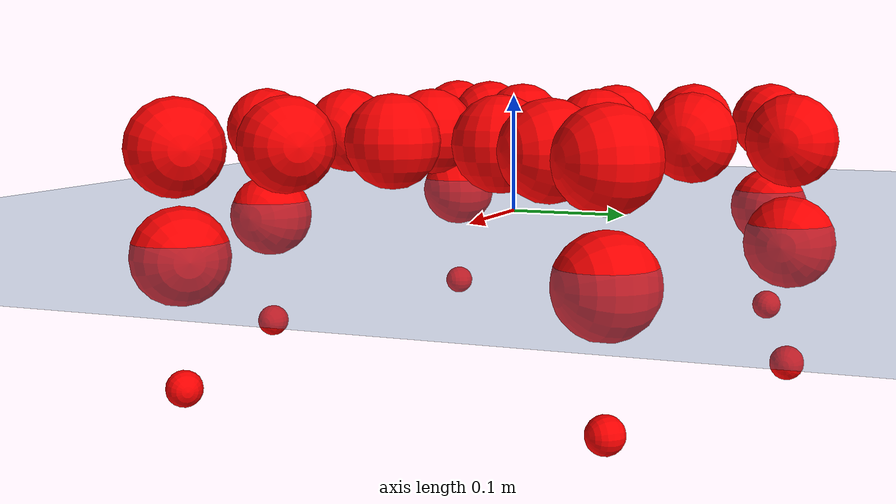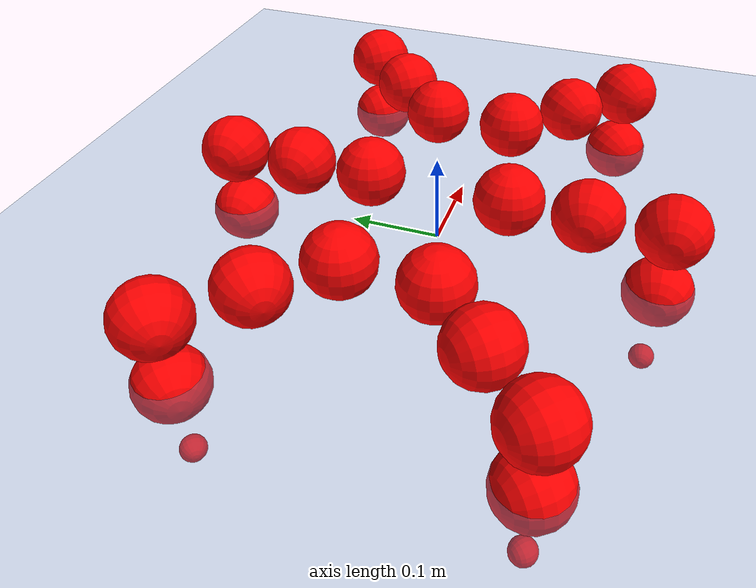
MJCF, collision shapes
<mujoco model="Golem">
  <compiler angle="radian" assetdir="assets" balanceinertia="true" inertiafromgeom="false"/>

  <option timestep="0.005" density="1.2" viscosity="2e-05"/>

  <size nkey="1"/>

  <visual>
    <quality shadowsize="8192"/>
    <map shadowclip="0.5"/>
  </visual>

  <default>
    <default class="/">
      <joint armature="0.01" damping="0.01" frictionloss="0.01"/>
      <geom contype="0" conaffinity="0" group="1" solref="-1000 -80"/>
      <site size="0.01 0.005 0.005" group="5"/>
      <general forcelimited="true" biastype="affine" gainprm="25" biasprm="0 -25 -0.5"/>
      <default class="visual">
        <geom type="mesh" group="2"/>
      </default>
      <default class="collision">
        <geom group="3"/>
      </default>
      <default class="foot">
        <geom size="0.01 0 0" condim="6" group="4" priority="1" solimp="0.015 1 0.01"/>
      </default>
      <default class="reward_collision_sphere">
        <geom group="5" rgba="1 0 0 1"/>
      </default>
    </default>
  </default>

  <asset>
    <texture type="skybox" colorspace="auto" name="//unnamed_texture_0" builtin="gradient" rgb1="0.95 0.95 0.95" rgb2="0.95 0.95 0.95" width="100" height="600"/>
    <texture type="2d" colorspace="auto" name="texplane" builtin="checker" rgb1="0.345 0.575 0.748" rgb2="0.345 0.575 0.748" markrgb="1 1 1" width="512" height="512"/>
    <material name="MatPlane" class="/" texture="texplane" texuniform="true" texrepeat="2 2" specular="0.9"/>
    <mesh name="body" class="/" file="body.stl" scale="0.001 0.001 0.001"/>
    <mesh name="coxa" class="/" file="coxa.stl" scale="0.001 0.001 0.001"/>
    <mesh name="femur" class="/" file="femur.stl" scale="0.001 0.001 0.001"/>
    <mesh name="tibia" class="/" file="tibia.stl" scale="0.001 0.001 0.001"/>
    <mesh name="tarsus" class="/" file="tarsus.stl" scale="0.001 0.001 0.001"/>
  </asset>

  <worldbody>
    <geom name="floor" class="/" size="100 100 0.125" type="plane" group="0" material="MatPlane"/>
    <light name="toplight_shadow" class="/" pos="0 0 5" dir="0.0990148 0.0990148 -0.990148" type="directional" ambient="0.04 0.04 0.04" diffuse="0.55 0.55 0.55" specular="0.12 0.12 0.12"/>
    <light name="toplight_fill" class="/" pos="0 0 5" dir="0.0990148 0.0990148 -0.990148" type="directional" castshadow="false" ambient="0.04 0.04 0.04" diffuse="0.3 0.3 0.3" specular="0.08 0.08 0.08"/>
    <body name="trunk" pos="0.000988868 0.000257429 -0.00174792" quat="1 6.80404e-05 1.97132e-05 -7.23256e-05">
      <inertial pos="-0.000472363 -0.000339 -0.00314926" quat="1 2.5515e-05 3.82514e-06 6.56989e-06" mass="3.139" diaginertia="0.00699569 0.00315077 0.016426"/>
      <joint name="//unnamed_joint_0" type="free"/>
      <geom name="//unnamed_geom_1" class="/" pos="0 0 0.0708021" quat="1 0 0 0" type="mesh" rgba="0.9 0.9 0.9 1" mesh="body"/>
      <site name="imu" class="/" pos="0.123172 -0.0023631 0.108466" size="0.00944907"/>
      <camera name="track" class="/" pos="0 -1.5866 0" quat="0.707107 0.707107 0 0" mode="trackcom"/>
      <camera name="ego_camera" class="/" pos="0.121568 0 0.110628" quat="-0.5 -0.5 0.5 0.5"/>
      <body name="coxa_RR" pos="-0.167633 -0.0671086 0.0703386" quat="0.382688 -8.87036e-05 0.000164609 -0.923878">
        <inertial pos="0.00029253 -0.00160537 0.000689582" quat="1 0.000533196 0.000169094 -0.000304204" mass="0.164676" diaginertia="0.00697655 0.00309911 0.0159879"/>
        <joint name="coxa_joint_RR" class="/" pos="0 0 0" axis="-0.0058699 -0.00117905 -0.999982" range="-3.13937 3.14433" armature="0.00981757" damping="0.0137444" frictionloss="0.00970388"/>
        <geom name="//unnamed_geom_2" class="/" type="mesh" rgba="0.2 0.2 0.2 1" mesh="coxa"/>
        <geom name="//unnamed_geom_3" class="reward_collision_sphere" size="0.0377963" pos="-0.0280541 0 0"/>
        <body name="femur_RR" pos="0.0571344 -0.000893251 0.000585143" quat="0.499953 -0.499992 0.499933 0.500121">
          <inertial pos="0.000185932 -0.000807386 0.000895024" quat="1 -0.000162002 -0.000230158 0.000189027" mass="0.168472" diaginertia="0.0071051 0.00311977 0.0165184"/>
          <joint name="femur_joint_RR" class="/" pos="0 0 0" axis="-0.00126504 0.00220338 -0.999997" stiffness="0.0021516" range="-3.14447 3.11264" armature="0.00957401" damping="0.00206094" frictionloss="0.00941387"/>
          <geom name="//unnamed_geom_4" class="/" type="mesh" rgba="0.9 0.9 0.9 1" mesh="femur"/>
          <geom name="//unnamed_geom_5" class="reward_collision_sphere" size="0.0377963"/>
          <body name="tibia_RR" pos="0.00114197 -0.0855705 0.00116237" quat="-0.000308938 1 5.08596e-05 -0.000325023">
            <inertial pos="-0.000758038 0.000644667 -6.47234e-05" quat="1 6.59511e-05 -0.000868907 -0.00039688" mass="0.168471" diaginertia="0.00709505 0.00311577 0.0163997"/>
            <joint name="tibia_joint_RR" class="/" pos="0 0 0" axis="0.00581792 -0.00244469 0.99998" range="-3.17139 3.15842" armature="0.00940919" damping="0.000319291" frictionloss="0.00968053"/>
            <geom name="//unnamed_geom_6" class="/" type="mesh" rgba="0.2 0.2 0.2 1" mesh="tibia"/>
            <geom name="//unnamed_geom_7" class="reward_collision_sphere" size="0.0377963"/>
            <body name="tarsus_RR" pos="0.0809603 0.00153445 0.000687336" quat="1 8.81135e-05 -0.000135354 0.00011051">
              <inertial pos="0.0558509 0.00162015 -3.14538e-05" quat="0.500414 0.497208 0.498891 0.503466" mass="0.169135" diaginertia="0.00721328 0.0031209 0.016633"/>
              <joint name="tarsus_joint_RR" class="/" pos="0 0 0" axis="0.00132665 4.81179e-05 0.999999" range="-3.12842 3.13948" armature="0.00950018" damping="0.00846744" frictionloss="0.00963057"/>
              <geom name="//unnamed_geom_8" class="/" type="mesh" rgba="0.9 0.9 0.9 1" mesh="tarsus"/>
              <geom name="foot_1" class="foot" size="0.00941674" pos="0.104735 0 0" quat="0 -0.707107 0 0.707107"/>
              <geom name="//unnamed_geom_10" class="reward_collision_sphere" size="0.0377963"/>
              <geom name="//unnamed_geom_11" class="reward_collision_sphere" size="0.0141736" pos="0.100527 0 0"/>
              <site name="foot_1" class="foot" pos="0.104735 0 0" quat="0 -0.707107 0 0.707107" size="0.00944907"/>
            </body>
          </body>
        </body>
      </body>
      <body name="coxa_RM" pos="-0.000514938 -0.106321 0.0693732" quat="0.706562 -3.98007e-05 -0.000605866 -0.70765">
        <inertial pos="-0.000784993 9.76003e-05 0.00135309" quat="0.999997 -0.00211462 -0.00145917 0.000166196" mass="0.166906" diaginertia="0.00694498 0.00309222 0.0167379"/>
        <joint name="coxa_joint_RM" class="/" pos="0 0 0" axis="-0.000303933 9.16385e-05 -1" range="-3.17837 3.13447" armature="0.00998572" damping="0.0142167" frictionloss="0.00942618"/>
        <geom name="//unnamed_geom_12" class="/" type="mesh" rgba="0.2 0.2 0.2 1" mesh="coxa"/>
        <geom name="//unnamed_geom_13" class="reward_collision_sphere" size="0.0377963" pos="-0.0280541 0 0"/>
        <body name="femur_RM" pos="0.0543617 -0.000197367 -0.00101256" quat="0.500434 -0.499954 0.499932 0.49968">
          <inertial pos="-0.000895371 0.000916535 -0.000901092" quat="0.999987 -0.00224712 -0.003633 0.00287403" mass="0.169436" diaginertia="0.00718484 0.00314786 0.0165962"/>
          <joint name="femur_joint_RM" class="/" pos="0 0 0" axis="-0.00023379 -5.04603e-05 -1" range="-3.13295 3.13542" armature="0.00965562" damping="0.0113468" frictionloss="0.00990795"/>
          <geom name="//unnamed_geom_14" class="/" type="mesh" rgba="0.9 0.9 0.9 1" mesh="femur"/>
          <geom name="//unnamed_geom_15" class="reward_collision_sphere" size="0.0377963"/>
          <body name="tibia_RM" pos="0.000457435 -0.0843392 0.000696478" quat="0.00010188 1 0.000172959 -7.22486e-05">
            <inertial pos="0.00114556 0.00122609 -0.000186439" quat="1 -6.79787e-05 4.62788e-05 -0.000108349" mass="0.172404" diaginertia="0.00727736 0.00321011 0.0167548"/>
            <joint name="tibia_joint_RM" class="/" pos="0 0 0" axis="-3.18859e-05 -0.00344695 0.999994" range="-3.14337 3.09563" armature="0.00907949" damping="0" frictionloss="0.00949783"/>
            <geom name="//unnamed_geom_16" class="/" type="mesh" rgba="0.2 0.2 0.2 1" mesh="tibia"/>
            <geom name="//unnamed_geom_17" class="reward_collision_sphere" size="0.0377963"/>
            <body name="tarsus_RM" pos="0.0804784 -0.00165003 -0.000459101" quat="1 -1.10196e-05 -8.46817e-06 -4.86763e-06">
              <inertial pos="0.055108 0.00215902 -0.000777555" quat="0.500614 0.499629 0.500155 0.499601" mass="0.164633" diaginertia="0.00714544 0.00314469 0.0167699"/>
              <joint name="tarsus_joint_RM" class="/" pos="0 0 0" axis="0.00245281 0.00386526 0.99999" range="-3.13302 3.13503" armature="0.00913004" damping="0.00494026" frictionloss="0.00949178"/>
              <geom name="//unnamed_geom_18" class="/" type="mesh" rgba="0.9 0.9 0.9 1" mesh="tarsus"/>
              <geom name="foot_2" class="foot" size="0.00916588" pos="0.104735 0 0" quat="0 -0.707107 0 0.707107"/>
              <geom name="//unnamed_geom_20" class="reward_collision_sphere" size="0.0377963"/>
              <geom name="//unnamed_geom_21" class="reward_collision_sphere" size="0.0141736" pos="0.100527 0 0"/>
              <site name="foot_2" class="foot" pos="0.104735 0 0" quat="0 -0.707107 0 0.707107" size="0.00944907"/>
            </body>
          </body>
        </body>
      </body>
      <body name="coxa_RF" pos="0.166181 -0.064984 0.0703409" quat="0.92386 2.74782e-05 6.65018e-05 -0.38273">
        <inertial pos="-0.00106572 -0.00024058 0.000958613" quat="0.999993 -0.00243373 6.94346e-05 0.00271296" mass="0.171786" diaginertia="0.00738093 0.00313875 0.0170764"/>
        <joint name="coxa_joint_RF" class="/" pos="0 0 0" axis="0.00136021 -0.00579333 -0.999982" range="-3.12648 3.1404" armature="0.0092215" damping="0.0017936" frictionloss="0.00921128"/>
        <geom name="//unnamed_geom_22" class="/" type="mesh" rgba="0.2 0.2 0.2 1" mesh="coxa"/>
        <geom name="//unnamed_geom_23" class="reward_collision_sphere" size="0.0377963" pos="-0.0280541 0 0"/>
        <body name="femur_RF" pos="0.0568099 -0.00138689 4.57443e-05" quat="0.499676 -0.499943 0.499884 0.500497">
          <inertial pos="-0.000497903 0.000932653 0.000648475" quat="0.999996 0.00263226 4.41915e-05 -0.000481568" mass="0.162742" diaginertia="0.00710625 0.00308816 0.0162877"/>
          <joint name="femur_joint_RF" class="/" pos="0 0 0" axis="0.000799404 0.000276438 -1" range="-3.15934 3.10754" armature="0.00851994" damping="0.00814476" frictionloss="0.00852798"/>
          <geom name="//unnamed_geom_24" class="/" type="mesh" rgba="0.9 0.9 0.9 1" mesh="femur"/>
          <geom name="//unnamed_geom_25" class="reward_collision_sphere" size="0.0377963"/>
          <body name="tibia_RF" pos="-0.000319399 -0.084009 0.00129349" quat="8.4103e-05 1 0.000144838 -7.31732e-05">
            <inertial pos="-0.0013718 0.000114138 -0.000100951" quat="1 -0.000172651 0.000400517 -0.000234732" mass="0.17061" diaginertia="0.00715228 0.00315563 0.0166366"/>
            <joint name="tibia_joint_RF" class="/" pos="0 0 0" axis="0.00194809 0.000176801 0.999998" range="-3.14936 3.14122" armature="0.00943308" damping="0" frictionloss="0.00913302"/>
            <geom name="//unnamed_geom_26" class="/" type="mesh" rgba="0.2 0.2 0.2 1" mesh="tibia"/>
            <geom name="//unnamed_geom_27" class="reward_collision_sphere" size="0.0377963"/>
            <body name="tarsus_RF" pos="0.0808847 -0.00159013 -0.000561148" quat="1 6.17069e-07 7.15241e-06 5.66477e-05">
              <inertial pos="0.0550831 0.000873982 5.82181e-05" quat="0.500215 0.498651 0.493139 0.507884" mass="0.170741" diaginertia="0.00722465 0.00317407 0.0163858"/>
              <joint name="tarsus_joint_RF" class="/" pos="0 0 0" axis="-2.63637e-05 0.00117951 0.999999" range="-3.13453 3.142" armature="0.00864819" damping="0.0049541" frictionloss="0.00902002"/>
              <geom name="//unnamed_geom_28" class="/" type="mesh" rgba="0.9 0.9 0.9 1" mesh="tarsus"/>
              <geom name="foot_3" class="foot" size="0.00943032" pos="0.104735 0 0" quat="0 -0.707107 0 0.707107"/>
              <geom name="//unnamed_geom_30" class="reward_collision_sphere" size="0.0377963"/>
              <geom name="//unnamed_geom_31" class="reward_collision_sphere" size="0.0141736" pos="0.100527 0 0"/>
              <site name="foot_3" class="foot" pos="0.104735 0 0" quat="0 -0.707107 0 0.707107" size="0.00944907"/>
            </body>
          </body>
        </body>
      </body>
      <body name="coxa_LR" pos="-0.165188 0.0689806 0.0702907" quat="0.38272 -1.1969e-05 2.8706e-05 0.923864">
        <inertial pos="-0.00088447 -2.94021e-05 0.000120809" quat="0.999966 -0.0022969 -0.00719421 -0.0033933" mass="0.171154" diaginertia="0.00711261 0.00317555 0.0165481"/>
        <joint name="coxa_joint_LR" class="/" pos="0 0 0" axis="0.00285213 0.000395103 -0.999996" range="-3.13323 3.1196" armature="0.00966338" damping="0.0102364" frictionloss="0.00902404"/>
        <geom name="//unnamed_geom_32" class="/" type="mesh" rgba="0.2 0.2 0.2 1" mesh="coxa"/>
        <geom name="//unnamed_geom_33" class="reward_collision_sphere" size="0.0377963" pos="-0.0280541 0 0"/>
        <body name="femur_LR" pos="0.0556286 -0.00172202 5.10895e-05" quat="0.499976 -0.499999 0.500032 0.499994">
          <inertial pos="-0.00107025 -0.0017024 0.00132992" quat="1 -0.00012335 -2.20028e-05 -0.000316416" mass="0.170003" diaginertia="0.00699627 0.00315366 0.0165547"/>
          <joint name="femur_joint_LR" class="/" pos="0 0 0" axis="-0.00877528 0.00166136 0.99996" range="-3.13847 3.13433" armature="0.0104715" damping="0.00557861" frictionloss="0.00906483"/>
          <geom name="//unnamed_geom_34" class="/" type="mesh" rgba="0.9 0.9 0.9 1" mesh="femur"/>
          <geom name="//unnamed_geom_35" class="reward_collision_sphere" size="0.0377963"/>
          <body name="tibia_LR" pos="0.000809969 -0.0879874 -0.00089914" quat="0.000175701 1 7.83717e-05 9.13645e-05">
            <inertial pos="-0.000641293 -0.00135045 0.000418927" quat="0.99999 6.27109e-05 0.00311787 0.00313316" mass="0.168147" diaginertia="0.00720459 0.00311162 0.0162104"/>
            <joint name="tibia_joint_LR" class="/" pos="0 0 0" axis="-0.00214433 0.00411808 -0.999989" range="-3.13613 3.11498" armature="0.00944694" damping="0" frictionloss="0.00939327"/>
            <geom name="//unnamed_geom_36" class="/" type="mesh" rgba="0.2 0.2 0.2 1" mesh="tibia"/>
            <geom name="//unnamed_geom_37" class="reward_collision_sphere" size="0.0377963"/>
            <body name="tarsus_LR" pos="0.0852574 0.000287958 0.00100174" quat="1 -8.39789e-05 -2.39078e-05 -0.000126441">
              <inertial pos="0.0583801 -0.000685074 -0.000204594" quat="0.500057 0.500009 0.499952 0.499982" mass="0.169986" diaginertia="0.00714173 0.00312524 0.0165639"/>
              <joint name="tarsus_joint_LR" class="/" pos="0 0 0" axis="-0.00280885 0.00472591 -0.999985" range="-3.14717 3.12998" armature="0.00911237" damping="0.0274645" frictionloss="0.0094838"/>
              <geom name="//unnamed_geom_38" class="/" type="mesh" rgba="0.9 0.9 0.9 1" mesh="tarsus"/>
              <geom name="foot_4" class="foot" size="0.00938546" pos="0.104735 0 0" quat="0.707107 0 -0.707107 0"/>
              <geom name="//unnamed_geom_40" class="reward_collision_sphere" size="0.0377963"/>
              <geom name="//unnamed_geom_41" class="reward_collision_sphere" size="0.0141736" pos="0.100527 0 0"/>
              <site name="foot_4" class="foot" pos="0.104735 0 0" quat="0.707107 0 -0.707107 0" size="0.00944907"/>
            </body>
          </body>
        </body>
      </body>
      <body name="coxa_LM" pos="0.00121132 0.104025 0.0710541" quat="0.707024 0.000332556 0.000164988 0.70719">
        <inertial pos="-5.0784e-05 -0.000966253 -0.000584402" quat="0.999991 -0.000549172 0.00129852 -0.00404982" mass="0.166384" diaginertia="0.00718523 0.00316908 0.0164005"/>
        <joint name="coxa_joint_LM" class="/" pos="0 0 0" axis="0.00157345 0.00617845 -0.99998" range="-3.15929 3.17738" armature="0.00946568" damping="0.0106307" frictionloss="0.00954626"/>
        <geom name="//unnamed_geom_42" class="/" type="mesh" rgba="0.2 0.2 0.2 1" mesh="coxa"/>
        <geom name="//unnamed_geom_43" class="reward_collision_sphere" size="0.0377963" pos="-0.0280541 0 0"/>
        <body name="femur_LM" pos="0.0544086 0.00109303 -0.00206887" quat="0.499943 -0.49993 0.499662 0.500465">
          <inertial pos="0.000108719 -0.000717003 7.7556e-05" quat="0.999999 -0.000331909 -0.000323211 0.00158813" mass="0.173126" diaginertia="0.00720398 0.00315962 0.0167687"/>
          <joint name="femur_joint_LM" class="/" pos="0 0 0" axis="-0.000302481 0.000890207 1" stiffness="0.0048547" range="-3.16894 3.11155" armature="0.00907618" damping="0" frictionloss="0.00939213"/>
          <geom name="//unnamed_geom_44" class="/" type="mesh" rgba="0.9 0.9 0.9 1" mesh="femur"/>
          <geom name="//unnamed_geom_45" class="reward_collision_sphere" size="0.0377963"/>
          <body name="tibia_LM" pos="0.000325374 -0.0824482 0.000702544" quat="-3.8978e-05 1 -0.000436547 0.000120385">
            <inertial pos="-0.000283878 -0.00132395 -0.000196279" quat="0.999989 -0.00427069 -0.00101097 0.00179445" mass="0.165332" diaginertia="0.00712063 0.00304284 0.0163193"/>
            <joint name="tibia_joint_LM" class="/" pos="0 0 0" axis="0.00220503 0.000252286 -0.999998" range="-3.13811 3.14287" armature="0.00887125" damping="0" frictionloss="0.00958002"/>
            <geom name="//unnamed_geom_46" class="/" type="mesh" rgba="0.2 0.2 0.2 1" mesh="tibia"/>
            <geom name="//unnamed_geom_47" class="reward_collision_sphere" size="0.0377963"/>
            <body name="tarsus_LM" pos="0.0830701 -0.000270975 -0.000448404" quat="1 -0.000136188 3.05013e-08 1.61469e-06">
              <inertial pos="0.0566028 0.00053805 0.000591385" quat="0.496378 0.501415 0.502422 0.499765" mass="0.170999" diaginertia="0.00699244 0.00316842 0.0165945"/>
              <joint name="tarsus_joint_LM" class="/" pos="0 0 0" axis="-0.00128176 0.000391279 -0.999999" range="-3.12122 3.13497" armature="0.00921526" damping="0" frictionloss="0.00939484"/>
              <geom name="//unnamed_geom_48" class="/" type="mesh" rgba="0.9 0.9 0.9 1" mesh="tarsus"/>
              <geom name="foot_5" class="foot" size="0.00880845" pos="0.104735 0 0" quat="0.707107 0 -0.707107 0"/>
              <geom name="//unnamed_geom_50" class="reward_collision_sphere" size="0.0377963"/>
              <geom name="//unnamed_geom_51" class="reward_collision_sphere" size="0.0141736" pos="0.100527 0 0"/>
              <site name="foot_5" class="foot" pos="0.104735 0 0" quat="0.707107 0 -0.707107 0" size="0.00944907"/>
            </body>
          </body>
        </body>
      </body>
      <body name="coxa_LF" pos="0.168091 0.0666277 0.0707843" quat="0.923699 0.000626495 -5.35669e-05 0.383118">
        <inertial pos="0.000120203 0.000295558 0.000750929" quat="0.999997 -0.000928896 0.00057813 0.00233988" mass="0.171314" diaginertia="0.00720187 0.00309404 0.0167941"/>
        <joint name="coxa_joint_LF" class="/" pos="0 0 0" axis="-0.00355452 -0.00591076 -0.999976" range="-3.13624 3.14897" armature="0.00968969" damping="0.00113381" frictionloss="0.00912166"/>
        <geom name="//unnamed_geom_52" class="/" type="mesh" rgba="0.2 0.2 0.2 1" mesh="coxa"/>
        <geom name="//unnamed_geom_53" class="reward_collision_sphere" size="0.0377963" pos="-0.0280541 0 0"/>
        <body name="femur_LF" pos="0.0561367 0.000991797 0.000278351" quat="0.500076 -0.500215 0.500073 0.499636">
          <inertial pos="0.000114907 -0.000273931 0.00140027" quat="1 0.000632654 -6.87497e-05 -0.000104498" mass="0.173494" diaginertia="0.00712297 0.00316011 0.0165798"/>
          <joint name="femur_joint_LF" class="/" pos="0 0 0" axis="0.00168929 0.00154537 0.999997" range="-3.12852 3.14209" armature="0.00948886" damping="0.000559312" frictionloss="0.00996325"/>
          <geom name="//unnamed_geom_54" class="/" type="mesh" rgba="0.9 0.9 0.9 1" mesh="femur"/>
          <geom name="//unnamed_geom_55" class="reward_collision_sphere" size="0.0377963"/>
          <body name="tibia_LF" pos="0.000229939 -0.0840809 0.00155274" quat="0.000158671 1 4.68093e-05 -0.000817839">
            <inertial pos="-7.06957e-05 0.00120929 -0.00125774" quat="0.999968 0.00238177 -0.00592896 -0.00483515" mass="0.170554" diaginertia="0.00714137 0.00315713 0.016599"/>
            <joint name="tibia_joint_LF" class="/" pos="0 0 0" axis="0.00191091 0.00127393 -0.999997" range="-3.09767 3.11959" armature="0.00924712" damping="0.00886712" frictionloss="0.00942594"/>
            <geom name="//unnamed_geom_56" class="/" type="mesh" rgba="0.2 0.2 0.2 1" mesh="tibia"/>
            <geom name="//unnamed_geom_57" class="reward_collision_sphere" size="0.0377963"/>
            <body name="tarsus_LF" pos="0.0833175 0.00123612 0.000581731" quat="1 7.30739e-05 -8.49537e-05 0.00044619">
              <inertial pos="0.0546801 0.000910856 -0.000448287" quat="0.500248 0.499841 0.500056 0.499855" mass="0.169796" diaginertia="0.00720884 0.00315841 0.0168849"/>
              <joint name="tarsus_joint_LF" class="/" pos="0 0 0" axis="-0.00560365 -0.00327776 -0.999979" range="-3.14416 3.1253" armature="0.0100382" damping="0.0117933" frictionloss="0.0104008"/>
              <geom name="//unnamed_geom_58" class="/" type="mesh" rgba="0.9 0.9 0.9 1" mesh="tarsus"/>
              <geom name="foot_6" class="foot" size="0.00919811" pos="0.104735 0 0" quat="0.707107 0 -0.707107 0"/>
              <geom name="//unnamed_geom_60" class="reward_collision_sphere" size="0.0377963"/>
              <geom name="//unnamed_geom_61" class="reward_collision_sphere" size="0.0141736" pos="0.100527 0 0"/>
              <site name="foot_6" class="foot" pos="0.104735 0 0" quat="0.707107 0 -0.707107 0" size="0.00944907"/>
            </body>
          </body>
        </body>
      </body>
    </body>
  </worldbody>

  <contact>
    <pair class="/" geom1="floor" geom2="foot_1" name="//unnamed_contact_0"/>
    <pair class="/" geom1="floor" geom2="foot_2" name="//unnamed_contact_1"/>
    <pair class="/" geom1="floor" geom2="foot_3" name="//unnamed_contact_2"/>
    <pair class="/" geom1="floor" geom2="foot_4" name="//unnamed_contact_3"/>
    <pair class="/" geom1="floor" geom2="foot_5" name="//unnamed_contact_4"/>
    <pair class="/" geom1="floor" geom2="foot_6" name="//unnamed_contact_5"/>
  </contact>

  <actuator>
    <general name="coxa_joint_RR" class="/" joint="coxa_joint_RR" forcerange="-6.77696 6.77696" gainprm="23.0703" biasprm="0 -23.0703 -0.494545"/>
    <general name="femur_joint_RR" class="/" joint="femur_joint_RR" forcerange="-6.93722 6.93722" gainprm="23.0703" biasprm="0 -23.0703 -0.494545"/>
    <general name="tibia_joint_RR" class="/" joint="tibia_joint_RR" forcerange="-6.81395 6.81395" gainprm="23.0703" biasprm="0 -23.0703 -0.494545"/>
    <general name="tarsus_joint_RR" class="/" joint="tarsus_joint_RR" forcerange="-6.72276 6.72276" gainprm="23.0703" biasprm="0 -23.0703 -0.494545"/>
    <general name="coxa_joint_RM" class="/" joint="coxa_joint_RM" forcerange="-6.52508 6.52508" gainprm="23.0703" biasprm="0 -23.0703 -0.494545"/>
    <general name="femur_joint_RM" class="/" joint="femur_joint_RM" forcerange="-6.96391 6.96391" gainprm="23.0703" biasprm="0 -23.0703 -0.494545"/>
    <general name="tibia_joint_RM" class="/" joint="tibia_joint_RM" forcerange="-6.95754 6.95754" gainprm="23.0703" biasprm="0 -23.0703 -0.494545"/>
    <general name="tarsus_joint_RM" class="/" joint="tarsus_joint_RM" forcerange="-6.89173 6.89173" gainprm="23.0703" biasprm="0 -23.0703 -0.494545"/>
    <general name="coxa_joint_RF" class="/" joint="coxa_joint_RF" forcerange="-7.02182 7.02182" gainprm="23.0703" biasprm="0 -23.0703 -0.494545"/>
    <general name="femur_joint_RF" class="/" joint="femur_joint_RF" forcerange="-7.4365 7.4365" gainprm="23.0703" biasprm="0 -23.0703 -0.494545"/>
    <general name="tibia_joint_RF" class="/" joint="tibia_joint_RF" forcerange="-7.3017 7.3017" gainprm="23.0703" biasprm="0 -23.0703 -0.494545"/>
    <general name="tarsus_joint_RF" class="/" joint="tarsus_joint_RF" forcerange="-7.2202 7.2202" gainprm="23.0703" biasprm="0 -23.0703 -0.494545"/>
    <general name="coxa_joint_LR" class="/" joint="coxa_joint_LR" forcerange="-6.86913 6.86913" gainprm="23.0703" biasprm="0 -23.0703 -0.494545"/>
    <general name="femur_joint_LR" class="/" joint="femur_joint_LR" forcerange="-6.82922 6.82922" gainprm="23.0703" biasprm="0 -23.0703 -0.494545"/>
    <general name="tibia_joint_LR" class="/" joint="tibia_joint_LR" forcerange="-7.40981 7.40981" gainprm="23.0703" biasprm="0 -23.0703 -0.494545"/>
    <general name="tarsus_joint_LR" class="/" joint="tarsus_joint_LR" forcerange="-7.29933 7.29933" gainprm="23.0703" biasprm="0 -23.0703 -0.494545"/>
    <general name="coxa_joint_LM" class="/" joint="coxa_joint_LM" forcerange="-6.91999 6.91999" gainprm="23.0703" biasprm="0 -23.0703 -0.494545"/>
    <general name="femur_joint_LM" class="/" joint="femur_joint_LM" forcerange="-6.76103 6.76103" gainprm="23.0703" biasprm="0 -23.0703 -0.494545"/>
    <general name="tibia_joint_LM" class="/" joint="tibia_joint_LM" forcerange="-6.87486 6.87486" gainprm="23.0703" biasprm="0 -23.0703 -0.494545"/>
    <general name="tarsus_joint_LM" class="/" joint="tarsus_joint_LM" forcerange="-7.15491 7.15491" gainprm="23.0703" biasprm="0 -23.0703 -0.494545"/>
    <general name="coxa_joint_LF" class="/" joint="coxa_joint_LF" forcerange="-6.85532 6.85532" gainprm="23.0703" biasprm="0 -23.0703 -0.494545"/>
    <general name="femur_joint_LF" class="/" joint="femur_joint_LF" forcerange="-7.18809 7.18809" gainprm="23.0703" biasprm="0 -23.0703 -0.494545"/>
    <general name="tibia_joint_LF" class="/" joint="tibia_joint_LF" forcerange="-7.10247 7.10247" gainprm="23.0703" biasprm="0 -23.0703 -0.494545"/>
    <general name="tarsus_joint_LF" class="/" joint="tarsus_joint_LF" forcerange="-7.02903 7.02903" gainprm="23.0703" biasprm="0 -23.0703 -0.494545"/>
  </actuator>

  <sensor>
    <gyro site="imu" name="imu_angular_velocity"/>
    <velocimeter site="imu" name="imu_linear_velocity"/>
    <framelinvel objtype="site" objname="foot_1" name="foot_1_global_linear_velocity"/>
    <framelinvel objtype="site" objname="foot_2" name="foot_2_global_linear_velocity"/>
    <framelinvel objtype="site" objname="foot_3" name="foot_3_global_linear_velocity"/>
    <framelinvel objtype="site" objname="foot_4" name="foot_4_global_linear_velocity"/>
    <framelinvel objtype="site" objname="foot_5" name="foot_5_global_linear_velocity"/>
    <framelinvel objtype="site" objname="foot_6" name="foot_6_global_linear_velocity"/>
  </sensor>

  <keyframe>
    <key name="home" qpos="0 0 0.1457 1 0 0 0 0 0 0 0 0 0 0 0 0 0 0 0 0 0 0 0 0 0 0 0 0 0 0 0"/>
  </keyframe>
</mujoco>
